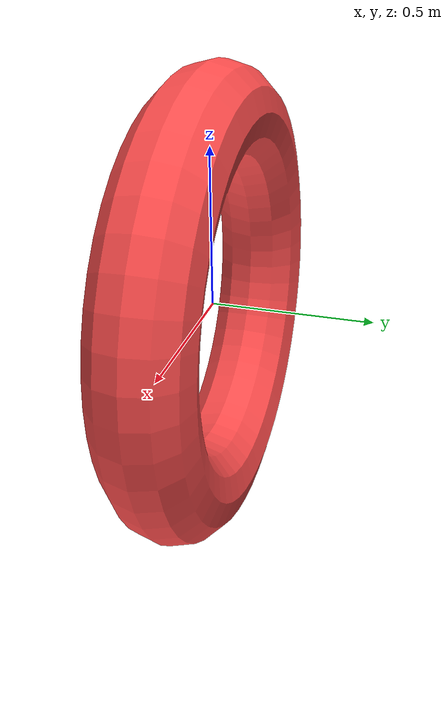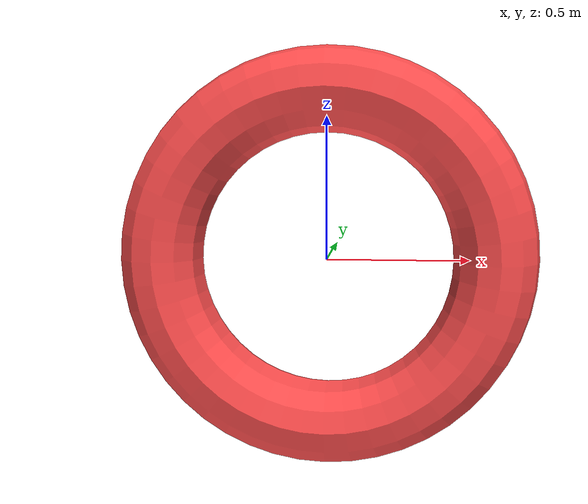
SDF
<?xml version="1.0" ?>
<sdf version="1.6">
  <model name="donut">
    <static>true</static>
    <link name="link">
      <visual name="visual">
        <geometry>
          <mesh>
            <uri>model://donut/meshes/torus.dae</uri>
          </mesh>
        </geometry>
        <material>
          <ambient>1 0 0 1</ambient>
          <diffuse>1 0.3 0.3 1</diffuse>
        </material>
      </visual>

      <collision name="collision">
        <geometry>
          <mesh>
            <uri>model://donut/meshes/torus.dae</uri>
          </mesh>
        </geometry>
      </collision>
    </link>
  </model>
</sdf>
